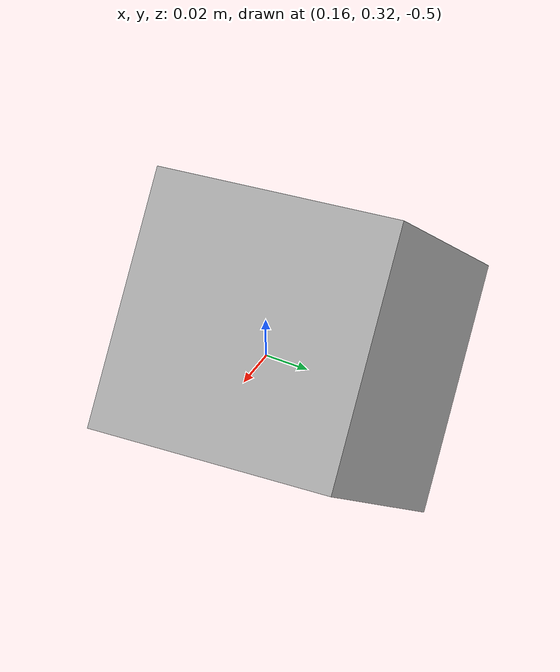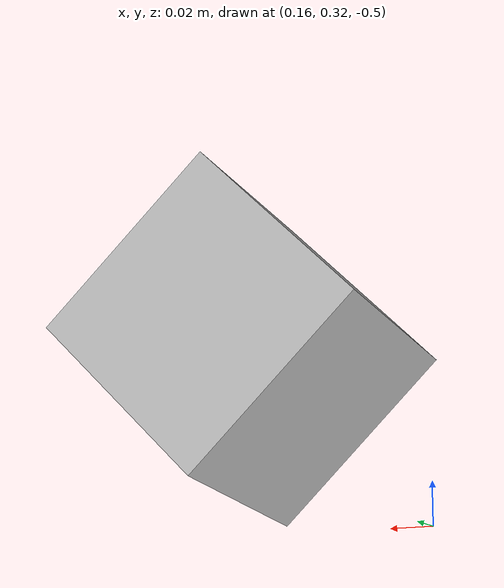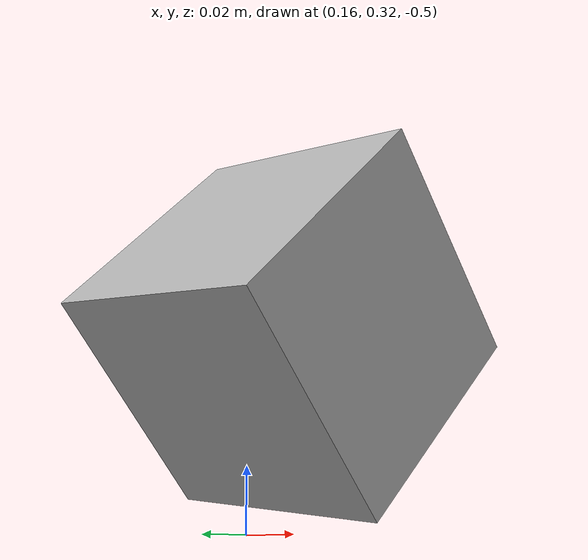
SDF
<?xml version="1.0"?>
<sdf version='1.7'>
    <model name='camera'>
      <static>true</static>
      <pose>1.2 0.3 0.475 3.1416 0.3916 -2.9</pose>

      <link name='link'>
        <pose>1.2 0.3 0.475 3.1416 0.3916 -2.9</pose>
        <visual name='visual'>
          <geometry>
            <box>
              <size>0.1 0.1 0.1</size>
            </box>
          </geometry>
        </visual>
        <sensor name='my_camera' type='camera'>
          <topic>/camera/image_raw</topic>
          <camera>

            <horizontal_fov>1.047</horizontal_fov>
            <image>
              <width>649</width>
              <height>480</height>
              <format>R8G8B8</format>
            </image>
            <clip>
              <near>0.05</near>
              <far>8.0</far>
            </clip>
          </camera>
          <always_on>1</always_on>
          <update_rate>30</update_rate>
        </sensor>
      </link>
    </model>
</sdf>
